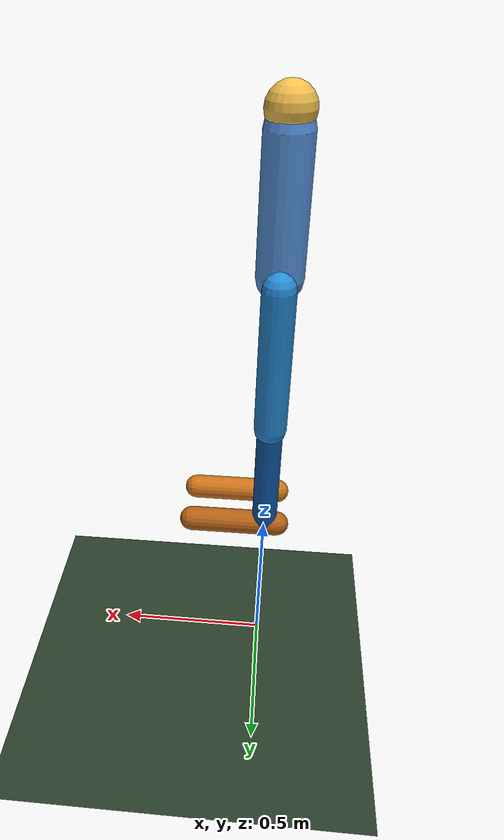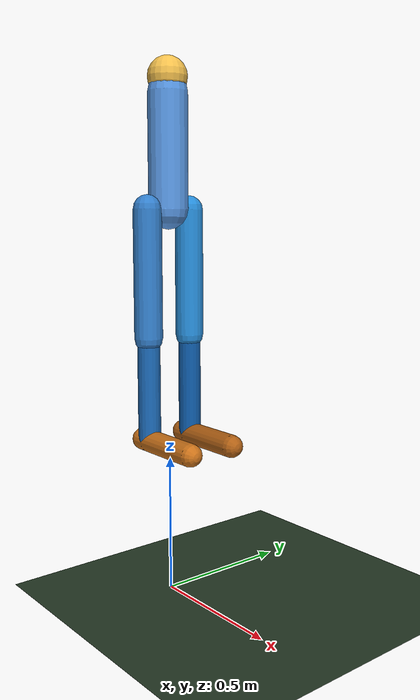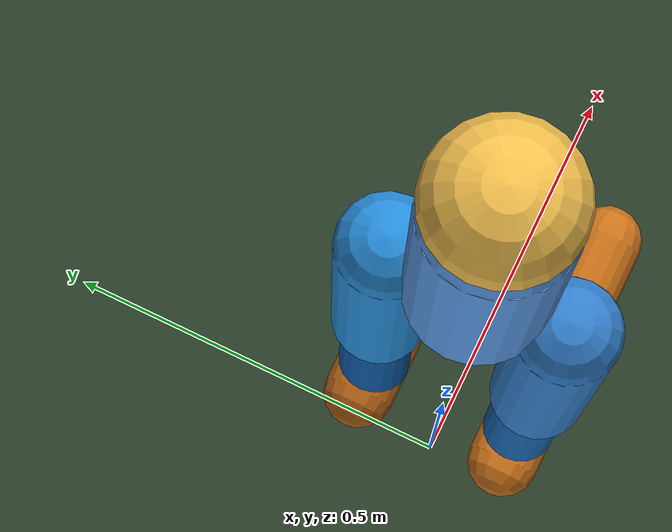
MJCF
<mujoco model="walker2d">
  <compiler angle="radian" autolimits="true"/>
  <option timestep="0.002" gravity="0 0 -9.81" integrator="RK4"/>

  <visual>
    <headlight ambient="0.3 0.3 0.3" diffuse="0.8 0.8 0.8"/>
    <rgba haze="0.1 0.15 0.2 1"/>
    <quality shadowsize="2048"/>
  </visual>

  <default>
    <joint limited="true" damping="0.1" armature="0.01" stiffness="0"/>
    <geom condim="3" friction="0.9 0.1 0.1"
          solimp="0.9 0.95 0.001" solref="0.02 1"/>
    <motor ctrllimited="true" ctrlrange="-1 1" gear="100"/>
  </default>

  <asset>
    <texture type="skybox" builtin="gradient" rgb1="0.4 0.6 0.8" rgb2="0.05 0.05 0.05" width="512" height="3072"/>
    <texture name="floor_tex" type="2d" builtin="checker"
             rgb1="0.2 0.3 0.2" rgb2="0.12 0.18 0.12" width="256" height="256"/>
    <material name="floor_mat"   texture="floor_tex" texrepeat="10 10"/>
    <material name="torso_mat"   rgba="0.35 0.60 0.90 1"/>
    <material name="rthigh_mat"  rgba="0.20 0.50 0.80 1"/>
    <material name="rleg_mat"    rgba="0.10 0.40 0.70 1"/>
    <material name="rfoot_mat"   rgba="0.80 0.45 0.10 1"/>
    <material name="lthigh_mat"  rgba="0.15 0.55 0.85 1"/>
    <material name="lleg_mat"    rgba="0.05 0.35 0.65 1"/>
    <material name="lfoot_mat"   rgba="0.70 0.38 0.08 1"/>
  </asset>

  <worldbody>
    <light name="top"   pos="0 0 7"  dir="0 0 -1"    diffuse="0.6 0.6 0.6" castshadow="true"/>
    <light name="side1" pos="4 0 5"  dir="-0.6 0 -0.8" diffuse="0.3 0.3 0.3"/>
    <geom  name="floor" type="plane" size="50 10 0.1" material="floor_mat"/>

    <!-- Torso — slides in x and z, rotates about y (sagittal plane) -->
    <body name="torso" pos="0 0 1.25">
      <joint name="rootx" type="slide" axis="1 0 0" limited="false" damping="0" armature="0"/>
      <joint name="rootz" type="slide" axis="0 0 1" limited="false" damping="0" armature="0"/>
      <joint name="rooty" type="hinge" axis="0 1 0" limited="false" damping="0" armature="0"/>
      <geom  name="torso_geom" type="capsule" fromto="0 0 0.15  0 0 0.55"
             size="0.07" material="torso_mat" mass="8.0"/>
      <geom  name="head_geom"  type="sphere"  pos="0 0 0.60" size="0.07"
             rgba="0.95 0.75 0.3 1" mass="0.8"/>

      <!-- Right leg -->
      <body name="right_thigh" pos="0 -0.09 0.15">
        <joint name="right_hip"   type="hinge" axis="0 1 0" range="-1.047 2.094" damping="2.0"/>
        <geom  name="right_thigh" type="capsule" fromto="0 0 0  0 0 -0.45"
               size="0.05" material="rthigh_mat" mass="2.0"/>
        <body  name="right_leg" pos="0 0 -0.45">
          <joint name="right_knee"  type="hinge" axis="0 1 0" range="-1.745 -0.05" damping="2.0"/>
          <geom  name="right_leg"   type="capsule" fromto="0 0 0  0 0 -0.37"
                 size="0.04" material="rleg_mat" mass="1.2"/>
          <body  name="right_foot" pos="0 0 -0.37">
            <joint name="right_ankle" type="hinge" axis="0 1 0" range="-0.698 0.524" damping="2.0"/>
            <geom  name="right_foot"  type="capsule" fromto="-0.04 0 0  0.24 0 0"
                   size="0.04" material="rfoot_mat" mass="0.5" friction="1.5 0.1 0.1"/>
          </body>
        </body>
      </body>

      <!-- Left leg -->
      <body name="left_thigh" pos="0 0.09 0.15">
        <joint name="left_hip"    type="hinge" axis="0 1 0" range="-1.047 2.094" damping="2.0"/>
        <geom  name="left_thigh"  type="capsule" fromto="0 0 0  0 0 -0.45"
               size="0.05" material="lthigh_mat" mass="2.0"/>
        <body  name="left_leg" pos="0 0 -0.45">
          <joint name="left_knee"   type="hinge" axis="0 1 0" range="-1.745 -0.05" damping="2.0"/>
          <geom  name="left_leg"    type="capsule" fromto="0 0 0  0 0 -0.37"
                 size="0.04" material="lleg_mat" mass="1.2"/>
          <body  name="left_foot" pos="0 0 -0.37">
            <joint name="left_ankle"  type="hinge" axis="0 1 0" range="-0.698 0.524" damping="2.0"/>
            <geom  name="left_foot"   type="capsule" fromto="-0.04 0 0  0.24 0 0"
                   size="0.04" material="lfoot_mat" mass="0.5" friction="1.5 0.1 0.1"/>
          </body>
        </body>
      </body>

    </body>
  </worldbody>

  <actuator>
    <motor name="right_hip_act"   joint="right_hip"   gear="100"/>
    <motor name="right_knee_act"  joint="right_knee"  gear="100"/>
    <motor name="right_ankle_act" joint="right_ankle" gear="100"/>
    <motor name="left_hip_act"    joint="left_hip"    gear="100"/>
    <motor name="left_knee_act"   joint="left_knee"   gear="100"/>
    <motor name="left_ankle_act"  joint="left_ankle"  gear="100"/>
  </actuator>

  <sensor>
    <jointpos name="rh_pos"  joint="right_hip"/>
    <jointpos name="rk_pos"  joint="right_knee"/>
    <jointpos name="ra_pos"  joint="right_ankle"/>
    <jointpos name="lh_pos"  joint="left_hip"/>
    <jointpos name="lk_pos"  joint="left_knee"/>
    <jointpos name="la_pos"  joint="left_ankle"/>
    <jointvel name="rh_vel"  joint="right_hip"/>
    <jointvel name="rk_vel"  joint="right_knee"/>
    <jointvel name="ra_vel"  joint="right_ankle"/>
    <jointvel name="lh_vel"  joint="left_hip"/>
    <jointvel name="lk_vel"  joint="left_knee"/>
    <jointvel name="la_vel"  joint="left_ankle"/>
  </sensor>
</mujoco>
